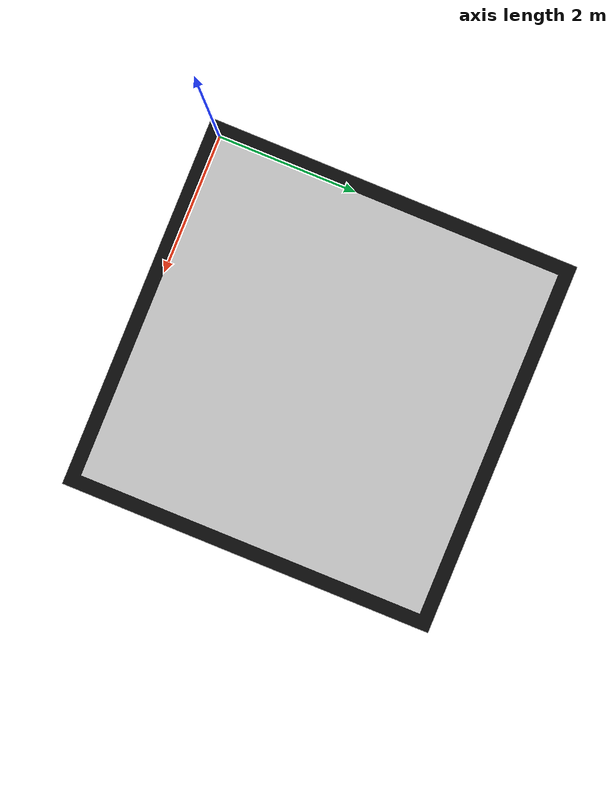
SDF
<?xml version="1.0" ?>
<sdf version="1.6">
  <model name="path_tracking_stage">
    <static>true</static>
    <link name="link">
      <collision name="collision">
        <geometry>
          <mesh>
            <scale>1 1 1</scale>
            <uri>model://path_tracking_stage/meshes/diffusion_stage.stl</uri>
          </mesh>
        </geometry>
        <surface>
          <friction>
            <ode>
              <mu>1.2</mu>
              <mu2>1.2</mu2>
            </ode>
          </friction>
        </surface>
      </collision>
      <visual name="visual">
        <geometry>
          <mesh>
            <scale>1 1 1</scale>
            <uri>model://path_tracking_stage/meshes/diffusion_stage.dae</uri>
          </mesh>
        </geometry>
      </visual>
    </link>
  </model>
</sdf>
